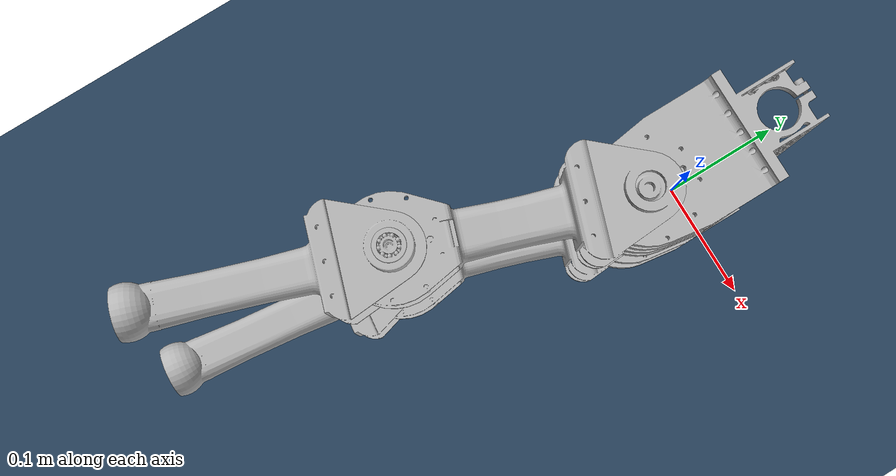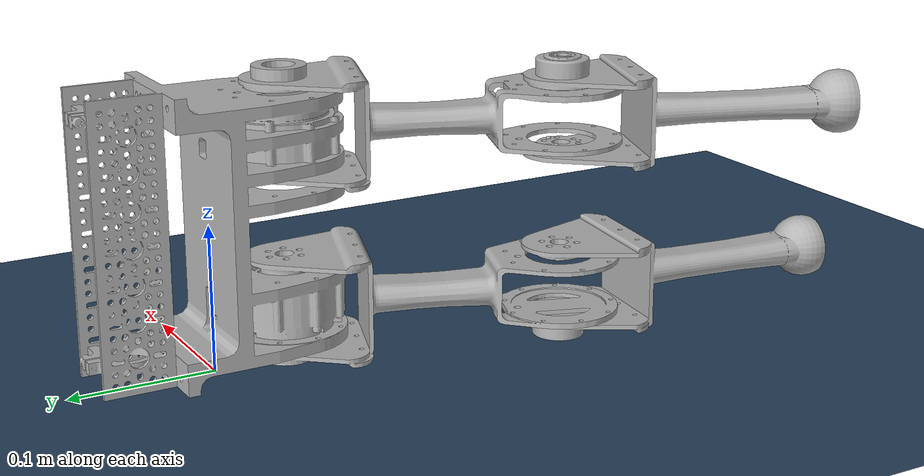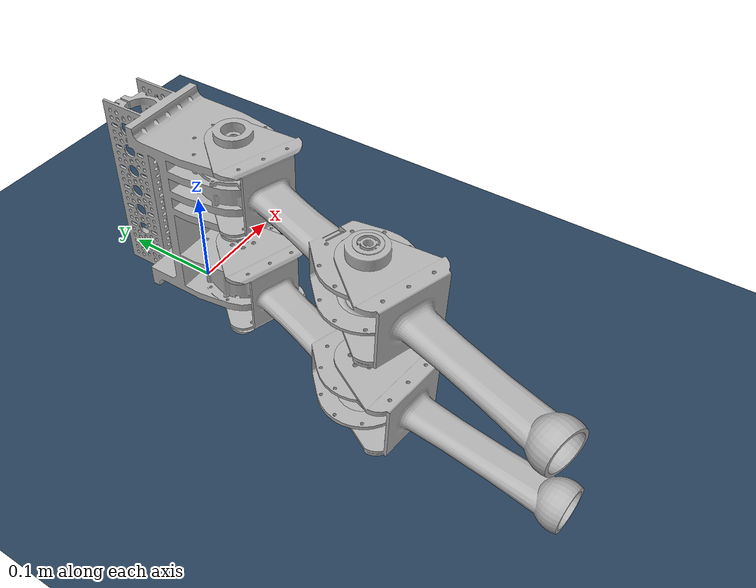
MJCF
<mujoco model="biped-URDF-fixed">
  <default>
    <default class="robot">
      <default class="visual">
        <geom contype="0" conaffinity="0" group="2" />
      </default>
      <default class="collision">
        <geom contype="0" conaffinity="1" group="3" />
      </default>
    </default>
    <default class="floor">
      <geom type="plane" size="0 0 0.05" material="groundplane" />
    </default>
  </default>

  <compiler angle="radian" meshdir="." balanceinertia="true" />

  <visual>
    <global offwidth="3840" offheight="2160" />
  </visual>

  <worldbody>
    <body name="base_link" childclass="robot" pos="0 0 0.1005">
      <geom name="base_link_collision" type="mesh" mesh="base_link_collision_base_link" class="collision" />
      <geom name="base_link_visual" type="mesh" mesh="base_link_base_link" material="default_material" class="visual" />
      <body name="L_thigh_link" pos="0 -0.0525 0.0975" quat="0.961 0 0 -0.2765">
        <inertial pos="0.030049 -0.12711 -0.037895" mass="0.26333" diaginertia="0.00036191 0.00012037 0.00042449" />
        <joint name="L_hip_joint" type="hinge" range="-1.57 1.57" axis="0 0 1" />
        <geom name="L_thigh_link_collision" type="mesh" mesh="L_thigh_link_collision_L_thigh_link" class="collision" />
        <geom name="L_thigh_link_visual" type="mesh" mesh="L_thigh_link_L_thigh_link" material="default_material" class="visual" />
        <body name="L_foot_link" pos="0.043239 -0.18296 0" quat="0.993 0 0 0.1184">
          <inertial pos="5.4419E-08 -0.08098 -0.036936" mass="0.17812" diaginertia="0.00033579 5.5113e-05 0.00035765" />
          <joint name="L_knee_joint" type="hinge" range="-1.57 1.57" axis="0 0 1" />
          <geom name="L_foot_link_collision" type="mesh" mesh="L_foot_link_collision_L_foot_link" class="collision" />
          <geom name="L_foot_link_visual" type="mesh" mesh="L_foot_link_L_foot_link" material="default_material" class="visual" />
        </body>
      </body>
      <body name="R_thigh_link" pos="0 -0.0525 -0.1005" quat="0 1 0 0">
        <inertial pos="-0.04144 0.12387 -0.040895" mass="0.26333" diaginertia="0.00034867 0.0001336 0.00042449" />
        <joint name="R_hip_joint" type="hinge" range="-1.57 1.57" axis="0 0 -1" />
        <geom name="R_thigh_link_collision" type="mesh" mesh="R_thigh_link_collision_R_thigh_link" class="collision" />
        <geom name="R_thigh_link_visual" type="mesh" mesh="R_thigh_link_R_thigh_link" material="default_material" class="visual" />
        <body name="R_foot_link" pos="-0.059694 0.17827 -0.003" quat="0.987 0 0 0.1609">
          <inertial pos="0.016404 0.079301 -0.036936" mass="0.17812" diaginertia="0.00032427 6.663e-05 0.00035765" />
          <joint name="R_knee_joint" type="hinge" range="-1.57 1.57" axis="0 0 -1" />
          <geom name="R_foot_link_collision" type="mesh" mesh="R_foot_link_collision_R_foot_link" class="collision" />
          <geom name="R_foot_link_visual" type="mesh" mesh="R_foot_link_R_foot_link" material="default_material" class="visual" />
        </body>
      </body>
      <freejoint name="floating_base" />
    </body>
    <light pos="0 0 2." dir="0 0 -1" directional="true" />
    <geom name="floor" class="floor" size="0 0 0.05" />
  </worldbody>

  <asset>
    <material name="default_material" rgba="0.7 0.7 0.7 1" />
    <mesh name="base_link_collision_base_link" file="meshes/base_link.STL" />
    <mesh name="base_link_base_link" file="meshes/base_link.STL" />
    <mesh name="L_thigh_link_collision_L_thigh_link" file="meshes/L_thigh_link.STL" />
    <mesh name="L_thigh_link_L_thigh_link" file="meshes/L_thigh_link.STL" />
    <mesh name="L_foot_link_collision_L_foot_link" file="meshes/L_foot_link.STL" />
    <mesh name="L_foot_link_L_foot_link" file="meshes/L_foot_link.STL" />
    <mesh name="R_thigh_link_collision_R_thigh_link" file="meshes/R_thigh_link.STL" />
    <mesh name="R_thigh_link_R_thigh_link" file="meshes/R_thigh_link.STL" />
    <mesh name="R_foot_link_collision_R_foot_link" file="meshes/R_foot_link.STL" />
    <mesh name="R_foot_link_R_foot_link" file="meshes/R_foot_link.STL" />
    <texture type="2d" name="groundplane" builtin="checker" mark="edge" rgb1="0.2 0.3 0.4" rgb2="0.1 0.2 0.3" markrgb="0.8 0.8 0.8" width="300" height="300" />
    <material name="groundplane" texture="groundplane" texuniform="true" texrepeat="5 5" reflectance="0.2" />
    <texture type="skybox" builtin="gradient" rgb1="0.3 0.5 0.7" rgb2="0 0 0" width="512" height="3072" />
  </asset>

  <actuator>
    <motor name="L_hip_joint" joint="L_hip_joint" />
    <motor name="L_knee_joint" joint="L_knee_joint" />
    <motor name="R_hip_joint" joint="R_hip_joint" />
    <motor name="R_knee_joint" joint="R_knee_joint" />
  </actuator>

  <visual>
    <rgba haze="0.15 0.25 0.35 1" />
  </visual>
</mujoco>
